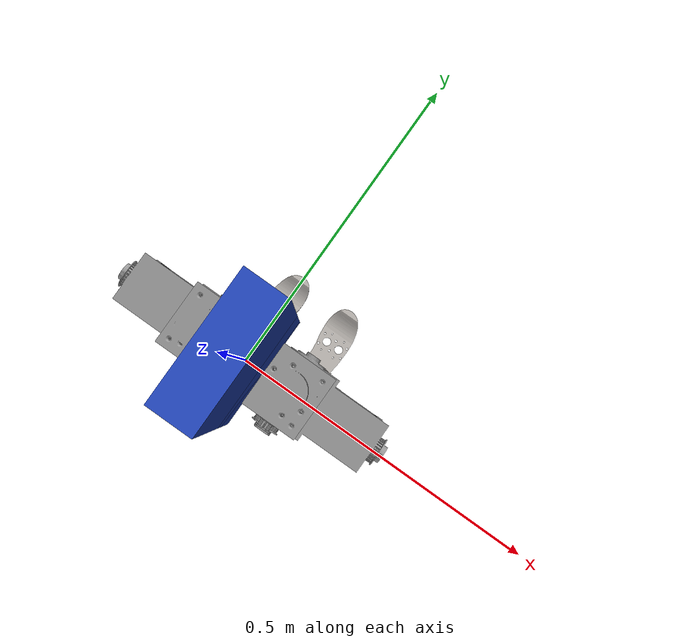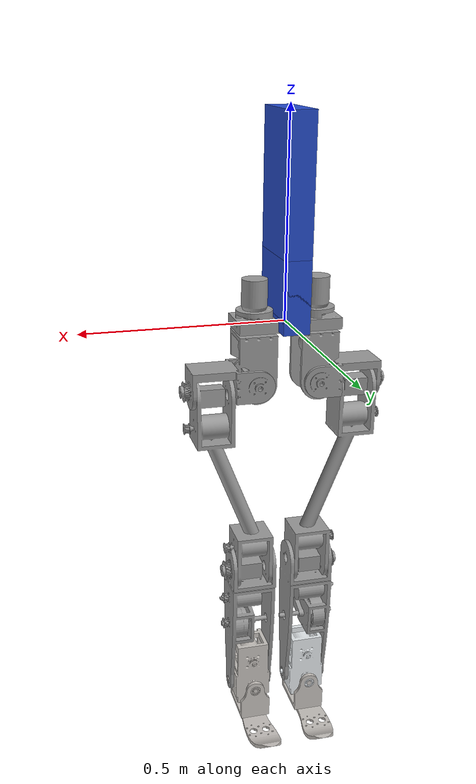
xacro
<?xml version="1.0"?>
<robot xmlns:xacro="http://www.ros.org/wiki/xacro" name="huron">
    <xacro:arg name="force_sensor" default="ft_sensor" />
    <xacro:property name="force_sensor_prop" value="$(arg force_sensor)" />

    <!-- HURON model for use with Gazebo simulation -->
    <xacro:include filename="$(find huron_description)/urdf/huron_macro.xacro" />
    <xacro:include filename="$(find huron_gazebo)/urdf/huron_ros2_control.xacro" />

    <!-- Add HURON Base -->
    <xacro:huron_base />

    <!-- ros2_control plugin -->
    <xacro:huron_ros2_control name="huron" prefix="" />

    <gazebo>
        <plugin name="ground_truth" filename="libgazebo_ros_p3d.so">
            <frameName>map</frameName>
            <bodyName>base_link</bodyName>
            <topicName>/huron/odom</topicName>
            <updateRate>100.0</updateRate>
        </plugin>
    </gazebo>

    <!-- imu sensor -->
    <gazebo reference="imu_link">
        <gravity>true</gravity>
        <sensor name="imu_sensor" type="imu">
            <always_on>true</always_on>
            <update_rate>100</update_rate>
            <visualize>true</visualize>
            <topic>/huron/sensor/imu</topic>
            <plugin filename="libgazebo_ros_imu_sensor.so" name="imu_plugin">
                <topicName>huron/sensor/imu</topicName>
                <bodyName>imu_link</bodyName>
                <updateRateHZ>10.0</updateRateHZ>
                <gaussianNoise>0.0</gaussianNoise>
                <xyzOffset>0 0 0</xyzOffset>
                <rpyOffset>0 0 0</rpyOffset>
                <frameName>imu_link</frameName>
            </plugin>
            <pose>0 0 0 0 0 0</pose>
        </sensor>
    </gazebo>

    <xacro:if value="${force_sensor_prop == 'fsr'}">
        <xacro:include filename="$(find huron_gazebo)/urdf/huron_fsr.xacro" />
    </xacro:if>
    <xacro:if value="${force_sensor_prop == 'ft_sensor'}">
        <xacro:include filename="$(find huron_gazebo)/urdf/huron_ft_sensor.xacro" />
    </xacro:if>

    <!-- World -->
    <gazebo reference="world"></gazebo>
    <!-- Map -->
    <gazebo reference="map"></gazebo>

    <gazebo reference="dummy"></gazebo>
    <!-- Base -->
    <gazebo reference="base_link">
        <mu1>0.2</mu1>
        <mu2>0.2</mu2>
        <material>Gazebo/Grey</material>
        <selfCollide>false</selfCollide>
    </gazebo>
    <!-- IMU -->
    <gazebo reference="imu_link"></gazebo>
    <!-- Body-->
    <!-- Battery -->
    <gazebo reference="battery_link">
        <material>Gazebo/SkyBlue</material>
        <selfCollide>false</selfCollide>
    </gazebo>
    <!-- Upper body visualization -->
    <gazebo reference="upper_body_link">
        <material>Gazebo/SkyBlue</material>
        <selfCollide>false</selfCollide>
    </gazebo>
    <!-- Left Leg -->
    <gazebo reference="l_hip_yaw_link">
        <mu1>0.2</mu1>
        <mu2>0.2</mu2>
        <material>Gazebo/Grey</material>
        <selfCollide>false</selfCollide>

    </gazebo>
    <gazebo reference="l_hip_roll_link">
        <mu1>0.2</mu1>
        <mu2>0.2</mu2>
        <material>Gazebo/Grey</material>
        <selfCollide>false</selfCollide>
    </gazebo>
    <gazebo reference="l_hip_pitch_link">
        <mu1>0.2</mu1>
        <mu2>0.2</mu2>
        <material>Gazebo/Grey</material>
        <selfCollide>false</selfCollide>
    </gazebo>
    <gazebo reference="l_knee_pitch_link">
        <mu1>0.2</mu1>
        <mu2>0.2</mu2>
        <material>Gazebo/Grey</material>
        <selfCollide>false</selfCollide>
    </gazebo>
    <gazebo reference="l_ankle_pitch_link">
        <mu1>0.2</mu1>
        <mu2>0.2</mu2>
        <material>Gazebo/Grey</material>
        <selfCollide>false</selfCollide>
    </gazebo>
    <gazebo reference="l_ankle_roll_link">
        <kp>1e15</kp>
        <kd>1e13</kd>
        <mu1>0.9</mu1>
        <mu2>0.9</mu2>
        <fdir1>0 0 1</fdir1>
        <material>Gazebo/Blue</material>
    </gazebo>

    <!-- Right Leg -->
    <gazebo reference="r_hip_yaw_link">
        <mu1>0.2</mu1>
        <mu2>0.2</mu2>
        <material>Gazebo/Grey</material>
        <selfCollide>false</selfCollide>
    </gazebo>
    <gazebo reference="r_hip_roll_link">
        <mu1>0.2</mu1>
        <mu2>0.2</mu2>
        <material>Gazebo/Grey</material>
        <selfCollide>false</selfCollide>
    </gazebo>
    <gazebo reference="r_hip_pitch_link">
        <mu1>0.2</mu1>
        <mu2>0.2</mu2>
        <material>Gazebo/Grey</material>
        <selfCollide>false</selfCollide>
    </gazebo>
    <gazebo reference="r_knee_pitch_link">
        <mu1>0.2</mu1>
        <mu2>0.2</mu2>
        <material>Gazebo/Grey</material>
        <selfCollide>false</selfCollide>
    </gazebo>
    <gazebo reference="r_ankle_pitch_link">
        <mu1>0.2</mu1>
        <mu2>0.2</mu2>
        <material>Gazebo/Grey</material>
        <selfCollide>false</selfCollide>
    </gazebo>
    <gazebo reference="r_ankle_roll_link">
        <kp>1e15</kp>
        <kd>1e13</kd>
        <mu1>0.9</mu1>
        <mu2>0.9</mu2>
        <fdir1>0 0 1</fdir1>
        <material>Gazebo/Blue</material>
    </gazebo>
</robot>

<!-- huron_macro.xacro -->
<robot xmlns:xacro="http://wiki.ros.org/xacro">
  <!--
    Macro to generate a basic HURON robot.
  -->

  <xacro:macro name="huron_base">

    <xacro:include filename="$(find huron_description)/urdf/materials.xacro" />
    <xacro:include filename="$(find huron_description)/urdf/huron_visuals.xacro" />
    <xacro:include filename="$(find huron_description)/urdf/huron_inertia.xacro" />
    <xacro:include filename="$(find huron_description)/urdf/huron_right_leg.xacro" />
    <xacro:include filename="$(find huron_description)/urdf/huron_left_leg.xacro" />
    <xacro:include filename="$(find huron_description)/urdf/huron_misc.xacro" />
    <xacro:include filename="$(find huron_description)/urdf/huron_transmissions.xacro" />

    <link name="dummy"></link>
    <link name="base_link">
      <visual>
        <origin xyz="0 0 0" rpy="0 0 0" />
        <geometry>
          <mesh filename="package://huron_description/meshes/base_link.STL" scale="1 1 1" />
        </geometry>
      </visual>
      <collision>
        <origin xyz="0 0 0" rpy="0 0 0" />
        <geometry>
          <mesh filename="package://huron_description/meshes/base_link.STL" scale="1 1 1" />
        </geometry>
      </collision>
      <inertial>
        <origin
          xyz="-1.3585E-07 5.07E-07 0.026975"
          rpy="0 0 0" />
        <mass
          value="3.4072" />
        <inertia
          ixx="0.00319"
          ixy="-1.7776E-09"
          ixz="-1.7316E-09"
          iyy="0.010531"
          iyz="6.4623E-09"
          izz="0.012315" />
      </inertial>
    </link>
    <joint name="dummy_joint" type="fixed">
      <parent link="dummy"/>
      <child link="base_link"/>
    </joint>

    <!-- imu joint -->
    <joint name="imu_fixed" type="fixed">
      <origin xyz="0 0 0" rpy="0 0 0"/>
      <parent link="base_link"/>
      <child link="imu_link"/>
    </joint>
    <link name="imu_link"></link>

    <!-- leg link -->
    <xacro:huron_right_leg parent="base_link" dxl_effort="1000000" dxl_speed="3000"/>
    <xacro:huron_left_leg parent="base_link" dxl_effort="1000000" dxl_speed="3000"/>
    <xacro:huron_misc />

  </xacro:macro>
</robot>

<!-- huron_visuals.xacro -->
<robot
    xmlns:xacro="http://www.ros.org/wiki/xacro">
    <!-- body link -->
    <xacro:macro name="insert_mesh_base_link">
        <origin xyz="0 0 0" rpy="0 0 0" />
        <geometry>
            <mesh filename="package://huron_description/meshes/base_link.STL" scale="1 1 1" />
        </geometry>
        <material name="grey"/>
    </xacro:macro>

    <!-- Battery -->
    <xacro:macro name="insert_mesh_battery_link">
        <origin xyz="0 0 0" rpy="0 0 0" />
        <geometry>
            <box size="0.065 0.188 0.151" />
        </geometry>
        <material name="blue"/>
    </xacro:macro>

    <!-- Upper body visualization -->
    <xacro:macro name="insert_mesh_upper_body_link">
        <origin xyz="0 0 0" rpy="0 0 0" />
        <geometry>
            <box size="0.065 0.188 0.5" />
        </geometry>
        <material name="blue"/>
    </xacro:macro>

    <!-- left hip yaw link -->
    <xacro:macro name="insert_mesh_l_hip_yaw_link">
        <origin xyz="0 0 0" rpy="0 0 0" />
        <geometry>
            <mesh filename="package://huron_description/meshes/l_hip_yaw_link.STL" scale="1 1 1" />
        </geometry>
        <material name="grey"/>
    </xacro:macro>
    <!-- left hip roll link -->
    <xacro:macro name="insert_mesh_l_hip_roll_link">
        <origin xyz="0 0 0" rpy="0 0 0" />
        <geometry>
            <mesh filename="package://huron_description/meshes/l_hip_roll_link.STL" scale="1 1 1" />
        </geometry>
        <material name="grey"/>
    </xacro:macro>
    <!-- left hip pitch link -->
    <xacro:macro name="insert_mesh_l_hip_pitch_link">
        <origin xyz="0 0 0" rpy="0 0 0" />
        <geometry>
            <mesh filename="package://huron_description/meshes/l_hip_pitch_link.STL" scale="1 1 1" />
        </geometry>
        <material name="grey"/>
    </xacro:macro>
    <!-- left knee pitch link -->
    <xacro:macro name="insert_mesh_l_knee_pitch_link">
        <origin xyz="0 0 0" rpy="0 0 0" />
        <geometry>
            <mesh filename="package://huron_description/meshes/l_knee_pitch_link.STL" scale="1 1 1" />
        </geometry>
        <material name="grey"/>
    </xacro:macro>
    <!-- left ankle pitch link -->
    <xacro:macro name="insert_mesh_l_ankle_pitch_link">
        <origin xyz="0 0 0" rpy="0 0 0" />
        <geometry>
            <mesh filename="package://huron_description/meshes/l_ankle_pitch_link.STL" scale="1 1 1" />
        </geometry>
        <material name="">
            <color rgba="0.89804 0.91765 0.92941 1" />
        </material>
    </xacro:macro>
    <!-- left ankle roll link -->
    <xacro:macro name="insert_mesh_l_ankle_roll_link">
        <origin xyz="0 0 0" rpy="0 0 0" />
        <geometry>
            <mesh filename="package://huron_description/meshes/l_ankle_roll_link.STL" scale="1 1 1" />
        </geometry>
        <material name="">
            <color rgba="0.77647 0.75686 0.73725 1" />
        </material>
    </xacro:macro>

    <!-- l1_foot_ft link -->
    <xacro:macro name="insert_mesh_l1_foot_ft_link">
        <origin xyz="0 0 0" rpy=" 0 0 0" />
        <geometry>
            <mesh filename="package://huron_description/meshes/l1_foot_ft_link.STL" scale="1 1 1" />
        </geometry>
        <material name="green"/>
    </xacro:macro>

    <!-- l2_foot_ft link  -->
    <xacro:macro name="insert_mesh_l2_foot_ft_link">
        <origin xyz="0 0 0" rpy=" 0 0 0" />
        <geometry>
            <mesh filename="package://huron_description/meshes/l2_foot_ft_link.STL" scale="1 1 1" />
        </geometry>
        <material name="green"/>
    </xacro:macro>

    <!-- l3_foot_ft link 3 -->
    <xacro:macro name="insert_mesh_l3_foot_ft_link">
        <origin xyz="0 0 0" rpy=" 0 0 0" />
        <geometry>
            <mesh filename="package://huron_description/meshes/l3_foot_ft_link.STL" scale="1 1 1" />
        </geometry>
        <material name="green"/>
    </xacro:macro>

    <!-- l4_foot_ft link 4 -->
    <xacro:macro name="insert_mesh_l4_foot_ft_link">
        <origin xyz="0 0 0" rpy=" 0 0 0" />
        <geometry>
            <mesh filename="package://huron_description/meshes/l4_foot_ft_link.STL" scale="1 1 1" />
        </geometry>
        <material name="green"/>
    </xacro:macro>

    <!-- right hip yaw link -->
    <xacro:macro name="insert_mesh_r_hip_yaw_link">
        <origin xyz="0 0 0" rpy="0 0 0" />
        <geometry>
            <mesh filename="package://huron_description/meshes/r_hip_yaw_link.STL" scale="1 1 1" />
        </geometry>
        <material name="grey"/>
    </xacro:macro>
    <!-- right hip roll link -->
    <xacro:macro name="insert_mesh_r_hip_roll_link">
        <origin xyz="0 0 0" rpy="0 0 0" />
        <geometry>
            <mesh filename="package://huron_description/meshes/r_hip_roll_link.STL" scale="1 1 1" />
        </geometry>
        <material name="grey"/>
    </xacro:macro>
    <!-- right hip pitch link -->
    <xacro:macro name="insert_mesh_r_hip_pitch_link">
        <origin xyz="0 0 0" rpy="0 0 0" />
        <geometry>
            <mesh filename="package://huron_description/meshes/r_hip_pitch_link.STL" scale="1 1 1" />
        </geometry>
        <material name="grey"/>
    </xacro:macro>
    <!-- right knee link -->
    <xacro:macro name="insert_mesh_r_knee_pitch_link">
        <origin xyz="0 0 0" rpy="0 0 0" />
        <geometry>
            <mesh filename="package://huron_description/meshes/r_knee_pitch_link.STL" scale="1 1 1" />
        </geometry>
        <material name="grey"/>
    </xacro:macro>
    <!-- right ankle pitch link -->
    <xacro:macro name="insert_mesh_r_ankle_pitch_link">
        <origin xyz="0 0 0" rpy="0 0 0" />
        <geometry>
            <mesh filename="package://huron_description/meshes/r_ankle_pitch_link.STL" scale="1 1 1" />
        </geometry>
        <material name="">
            <color rgba="0.77647 0.75686 0.73725 1" />
        </material>
    </xacro:macro>
    <!-- right ankle roll link -->
    <xacro:macro name="insert_mesh_r_ankle_roll_link">
        <origin xyz="0 0 0" rpy="0 0 0" />
        <geometry>
            <mesh filename="package://huron_description/meshes/r_ankle_roll_link.STL" scale="1 1 1" />
        </geometry>
        <material name="">
            <color rgba="0.77647 0.75686 0.73725 1" />
        </material>
    </xacro:macro>

    <!-- Right foot sensors -->
    <!-- r1_foot_ft link -->
    <xacro:macro name="insert_mesh_r1_foot_ft_link">
        <origin xyz="0 0 0" rpy=" 0 0 0" />
        <geometry>
            <mesh filename="package://huron_description/meshes/r1_foot_ft_link.STL" scale="1 1 1" />
        </geometry>
        <material name="green"/>
    </xacro:macro>

    <!-- r2_foot_ft link  -->
    <xacro:macro name="insert_mesh_r2_foot_ft_link">
        <origin xyz="0 0 0" rpy=" 0 0 0" />
        <geometry>
            <mesh filename="package://huron_description/meshes/r2_foot_ft_link.STL" scale="1 1 1" />
        </geometry>
        <material name="green"/>
    </xacro:macro>

    <!-- r3_foot_ft link 3-->
    <xacro:macro name="insert_mesh_r3_foot_ft_link">
        <origin xyz="0 0 0" rpy=" 0 0 0" />
        <geometry>
            <mesh filename="package://huron_description/meshes/r3_foot_ft_link.STL" scale="1 1 1" />
        </geometry>
        <material name="green"/>
    </xacro:macro>

    <!-- r4_foot_ft link 4 -->
    <xacro:macro name="insert_mesh_r4_foot_ft_link">
        <origin xyz="0 0 0" rpy=" 0 0 0" />
        <geometry>
            <mesh filename="package://huron_description/meshes/r4_foot_ft_link.STL" scale="1 1 1" />
        </geometry>
        <material name="green"/>
    </xacro:macro>

    <!-- Foot base -->
    <xacro:macro name="insert_mesh_foot_base_link">
        <origin xyz="0 0 0" rpy="0 0 0" />
        <geometry>
            <box size="0.078 0.005 0.231" />
        </geometry>
        <material name="green"/>
    </xacro:macro>
</robot>

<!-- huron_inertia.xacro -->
<robot
    xmlns:xacro="http://www.ros.org/wiki/xacro">
    <!-- body link -->
    <xacro:macro name="insert_inertia_base_link">
      <origin
        xyz="-1.3585E-07 5.07E-07 0.026975"
        rpy="0 0 0" />
      <mass
        value="3.4072" />
      <inertia
        ixx="0.00319"
        ixy="-1.7776E-09"
        ixz="-1.7316E-09"
        iyy="0.010531"
        iyz="6.4623E-09"
        izz="0.012315" />
    </xacro:macro>

    <!-- Battery link -->
    <xacro:macro name="insert_inertia_battery_link">
      <origin
        xyz="0 0 0"
        rpy="0 0 0" />
      <mass
        value="3.90089" />
      <inertia
        ixx="0.01890143742"
        ixy="0"
        ixz="0"
        iyy="0.0128628597"
        iyz="0"
        izz="0.008785454428" />
    </xacro:macro>

    <!-- Upper body visualization link -->
    <xacro:macro name="insert_inertia_upper_body_link">
      <origin
        xyz="0 0 0"
        rpy="0 0 0" />
      <mass
        value="0.00001" />
      <inertia
        ixx="0.000001"
        ixy="0"
        ixz="0"
        iyy="0.000001"
        iyz="0"
        izz="0.000001" />
    </xacro:macro>

    <!-- left hip yaw link -->
    <xacro:macro name="insert_inertia_l_hip_yaw_link">
      <origin
        xyz="0.00063365 -0.00053469 0.063505"
        rpy="0 0 0" />
      <mass
        value="1.6968" />
      <inertia
        ixx="0.0022702"
        ixy="-2.4951E-10"
        ixz="6.6464E-06"
        iyy="0.0026746"
        iyz="-5.1468E-09"
        izz="0.001238" />
    </xacro:macro>
    <!-- left hip roll link -->
    <xacro:macro name="insert_inertia_l_hip_roll_link">
      <origin
        xyz="0.07196 0.0061153 -0.0005211"
        rpy="0 0 0" />
      <mass
        value="1.1884" />
      <inertia
        ixx="0.00098222"
        ixy="-9.9267E-08"
        ixz="4.9764E-09"
        iyy="0.00097045"
        iyz="-9.7285E-08"
        izz="0.00092365" />
    </xacro:macro>
    <!-- left hip pitch link -->
    <xacro:macro name="insert_inertia_l_hip_pitch_link">
      <origin
        xyz="0.25103 -7.7295E-06 0.053135"
        rpy="0 0 0" />
      <mass
        value="4.2544" />
      <inertia
        ixx="0.0034501"
        ixy="-1.1102E-07"
        ixz="0.0019797"
        iyy="0.010035"
        iyz="-4.8767E-10"
        izz="0.01009" />
    </xacro:macro>
    <!-- left knee link -->
    <xacro:macro name="insert_inertia_l_knee_pitch_link">
      <origin
        xyz="0.13397 0.00066001 0.0028723"
        rpy="0 0 0" />
      <mass
        value="3.4875" />
      <inertia
        ixx="0.0064814"
        ixy="1.2524E-05"
        ixz="-2.7966E-05"
        iyy="0.019762"
        iyz="1.0417E-05"
        izz="0.017354" />
    </xacro:macro>
    <!-- left ankle pitch link -->
    <xacro:macro name="insert_inertia_l_ankle_pitch_link">
      <origin
        xyz="-0.029808 0.001045 3.1134E-08"
        rpy="0 0 0" />
      <mass
        value="2.4242" />
      <inertia
        ixx="0.0025143"
        ixy="-0.00025651"
        ixz="1.1633E-12"
        iyy="0.0045125"
        iyz="6.7197E-10"
        izz="0.0049235" />
    </xacro:macro>
    <!-- left ankle roll link -->
    <xacro:macro name="insert_inertia_l_ankle_roll_link">
      <origin
        xyz="0.07353 6.708E-05 0.063947"
        rpy="0 0 0" />
      <mass
        value="1.8633" />
      <inertia
        ixx="0.0086824"
        ixy="-9.8353E-06"
        ixz="0.00024334"
        iyy="0.0084059"
        iyz="0.00012379"
        izz="0.0013021" />
    </xacro:macro>

    <!-- Left foot sensors -->
    <!-- l1_foot_ft link -->
    <xacro:macro name="insert_inertia_l1_foot_ft_link">
      <origin
        xyz="-5.7176E-15 0.0047713 3.2752E-15"
        rpy="0 0 0" />
      <mass
        value="0.0061011" />
      <inertia
        ixx="3.1713E-07"
        ixy="3.8307E-22"
        ixz="-1.1921E-22"
        iyy="4.8773E-07"
        iyz="-1.0683E-22"
        izz="3.1713E-07" />
    </xacro:macro>

    <!-- l2_foot_ft link  -->
    <xacro:macro name="insert_inertia_l2_foot_ft_link">
      <origin
        xyz="-4.46864767411626E-15 0.00477126123234917 2.4980018054066E-15"
        rpy="0 0 0" />
      <mass
        value="0.00610112058812606" />
      <inertia
        ixx="3.17133668071686E-07"
        ixy="4.81665130591134E-22"
        ixz="-8.8406170379935E-23"
        iyy="4.87731969834605E-07"
        iyz="-8.74913874421171E-23"
        izz="3.17133668071686E-07" />
    </xacro:macro>

    <!-- l3_foot_ft link 3 -->
    <xacro:macro name="insert_inertia_l3_foot_ft_link">
      <origin
        xyz="-2.19269047363468E-15 0.00477126123234894 1.4432899320127E-15"
        rpy="0 0 0" />
      <mass
        value="0.00610112058812606" />
      <inertia
        ixx="3.17133668071686E-07"
        ixy="4.98475719906322E-22"
        ixz="-6.41076334805219E-23"
        iyy="4.87731969834605E-07"
        iyz="-7.83706170725903E-23"
        izz="3.17133668071686E-07" />
    </xacro:macro>

    <!-- l4_foot_ft link 4 -->
    <xacro:macro name="insert_inertia_l4_foot_ft_link">
      <origin
        xyz="-8.32667268468867E-16 0.00477126123234917 6.66133814775094E-16"
        rpy="0 0 0" />
      <mass
        value="0.00610112058812606" />
      <inertia
        ixx="3.17133668071686E-07"
        ixy="3.66436341457745E-22"
        ixz="5.6860083747849E-23"
        iyy="4.87731969834605E-07"
        iyz="-1.13521885241387E-22"
        izz="3.17133668071686E-07" />
    </xacro:macro>

 <!-- Right leg -->

    <!-- right hip yaw link -->
    <xacro:macro name="insert_inertia_r_hip_yaw_link">
      <origin
        xyz="0.00063365 0.00053469 0.063505"
        rpy="0 0 0" />
      <mass
        value="1.6968" />
      <inertia
        ixx="0.0022702"
        ixy="-2.4951E-10"
        ixz="6.6464E-06"
        iyy="0.0026746"
        iyz="5.1468E-09"
        izz="0.001238" />
    </xacro:macro>
    <!-- right hip roll link -->
    <xacro:macro name="insert_inertia_r_hip_roll_link">
      <origin
        xyz="-0.07196 0.0061153 -0.0005211"
        rpy="0 0 0" />
      <mass
        value="1.1884" />
      <inertia
        ixx="0.00098222"
        ixy="9.9267E-08"
        ixz="4.9764E-09"
        iyy="0.00097045"
        iyz="9.7285E-08"
        izz="0.00092365" />
    </xacro:macro>
    <!-- right hip pitch link -->
    <xacro:macro name="insert_inertia_r_hip_pitch_link">
      <origin
        xyz="0.25103 -7.7295E-06 -0.053135"
        rpy="0 0 0" />
      <mass
        value="4.2544" />
      <inertia
        ixx="0.0034501"
        ixy="1.1102E-07"
        ixz="-0.0019797"
        iyy="0.010035"
        iyz="-4.8767E-10"
        izz="0.01009" />
    </xacro:macro>
    <!-- right knee link -->
    <xacro:macro name="insert_inertia_r_knee_pitch_link">
      <origin
        xyz="0.13397 0.00066001 -0.0028723"
        rpy="0 0 0" />
      <mass
        value="3.4875" />
      <inertia
        ixx="0.0064814"
        ixy="1.2524E-05"
        ixz="2.7966E-05"
        iyy="0.019762"
        iyz="-1.0417E-05"
        izz="0.017354" />
    </xacro:macro>
    <!-- right ankle pitch link -->
    <xacro:macro name="insert_inertia_r_ankle_pitch_link">
      <origin
        xyz="-0.029808 0.001045 3.1134E-08"
        rpy="0 0 0" />
      <mass
        value="2.4242" />
      <inertia
        ixx="0.0025143"
        ixy="-0.00025651"
        ixz="1.1633E-12"
        iyy="0.0045125"
        iyz="6.7197E-10"
        izz="0.0049235" />
    </xacro:macro>
    <!-- right ankle roll link -->
    <xacro:macro name="insert_inertia_r_ankle_roll_link">
      <origin
        xyz="0.07353 -6.708E-05 0.063947"
        rpy="0 0 0" />
      <mass
        value="1.8633" />
      <inertia
        ixx="0.0086824"
        ixy="9.8353E-06"
        ixz="0.00024334"
        iyy="0.0084059"
        iyz="-0.00012379"
        izz="0.0013021" />
    </xacro:macro>

    <!-- Right foot sensors -->

    <!-- r1_foot_ft link -->
    <xacro:macro name="insert_inertia_r1_foot_ft_link">
      <origin
        xyz="4.02455846426619E-16 0.00477126123234806 2.77555756156289E-16"
        rpy="0 0 0" />
      <mass
        value="0.00610112058812607" />
      <inertia
        ixx="3.17133668071686E-07"
        ixy="-4.44802942503628E-22"
        ixz="-5.13396248201841E-23"
        iyy="4.87731969834605E-07"
        iyz="6.29534110948095E-22"
        izz="3.17133668071686E-07" />
    </xacro:macro>

    <!-- r2_foot_ft link  -->
    <xacro:macro name="insert_inertia_r2_foot_ft_link">
      <origin
        xyz="2.45636844198316E-15 0.00477126123234772 -5.55111512312578E-17"
        rpy="0 0 0" />
      <mass
        value="0.00610112058812607" />
      <inertia
        ixx="3.17133668071686E-07"
        ixy="-4.50854564995024E-22"
        ixz="-3.37723169777971E-23"
        iyy="4.87731969834605E-07"
        iyz="6.62187087857084E-22"
        izz="3.17133668071686E-07" />
    </xacro:macro>

    <!-- r_foot_ft link 3 -->
    <xacro:macro name="insert_inertia_r3_foot_ft_link">
      <origin
        xyz="1.84574577843932E-15 0.00477126123234928 -1.11022302462516E-16"
        rpy="0 0 0" />
      <mass
        value="0.00610112058812607" />
      <inertia
        ixx="3.17133668071686E-07"
        ixy="-4.50482113604524E-22"
        ixz="-5.92683031466877E-23"
        iyy="4.87731969834605E-07"
        iyz="6.6444452379759E-22"
        izz="3.17133668071686E-07" />
    </xacro:macro>

    <!-- r_foot_ft link 4 -->
    <xacro:macro name="insert_inertia_r4_foot_ft_link">
      <origin
        xyz="1.80411241501588E-15 0.00477126123234772 -1.66533453693773E-16"
        rpy="0 0 0" />
      <mass
        value="0.00610112058812607" />
      <inertia
        ixx="3.17133668071686E-07"
        ixy="-4.47159964907589E-22"
        ixz="1.84653258585498E-23"
        iyy="4.87731969834605E-07"
        iyz="6.53995762781336E-22"
        izz="3.17133668071686E-07" />
    </xacro:macro>

    <!-- Foot base link -->
    <xacro:macro name="insert_inertia_foot_base_link">
      <origin
        xyz="0 0 0"
        rpy="0 0 0" />
      <mass
        value="0.01" />
      <inertia
        ixx="4.448833333E-05"
        ixy="0"
        ixz="0"
        iyy="4.95375E-05"
        iyz="0"
        izz="5.090833333E-06" />
    </xacro:macro>
</robot>

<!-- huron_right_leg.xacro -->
<robot
    xmlns:xacro="http://www.ros.org/wiki/xacro">
    <!-- right leg -->
    <xacro:macro name="huron_right_leg" params="parent dxl_effort dxl_speed">
        <!-- right hip yaw joint -->
        <joint
          name="r_hip_yaw_joint"
          type="revolute">
          <origin
            xyz="0.0775 0 -0.14512"
            rpy="0 0 ${pi}" />
          <parent
            link="${parent}" />
          <child
            link="r_hip_yaw_link" />
          <axis
            xyz="0 0 1" />
          <limit
            lower="-3.1416"
            upper="3.1416"
            effort="${dxl_effort}"
            velocity="${dxl_speed}" />
          <dynamics
            damping="0.5"
            friction="1" />
        </joint>
        <xacro:insert_transmission name="r_hip_yaw_joint"/>
        <!-- right hip yaw link -->
        <link name="r_hip_yaw_link">
            <visual>
                <xacro:insert_mesh_r_hip_yaw_link />
            </visual>
            <collision>
                <xacro:insert_mesh_r_hip_yaw_link />
            </collision>
            <inertial>
                <xacro:insert_inertia_r_hip_yaw_link />
            </inertial>
        </link>
        <!-- right hip roll joint-->
        <joint
          name="r_hip_roll_joint"
          type="revolute">
          <origin
            xyz="0 0 0"
            rpy="${pi/2} 0 0" />
          <parent
            link="r_hip_yaw_link" />
          <child
            link="r_hip_roll_link" />
          <axis
            xyz="0 0 1" />
          <limit
            lower="-0.5236"
            upper="0.01"
            effort="${dxl_effort}"
            velocity="${dxl_speed}" />
          <dynamics
            damping="0.5"
            friction="1" />
        </joint>
        <xacro:insert_transmission name="r_hip_roll_joint"/>
        <!-- right hip roll link -->
        <link name="r_hip_roll_link">
            <visual>
                <xacro:insert_mesh_r_hip_roll_link />
            </visual>
            <collision>
                <xacro:insert_mesh_r_hip_roll_link />
            </collision>
            <inertial>
                <xacro:insert_inertia_r_hip_roll_link />
            </inertial>
        </link>
        <!-- right hip pitch joint -->
        <joint
          name="r_hip_pitch_joint"
          type="revolute">
          <origin
            xyz="-1.6665E-05 -0.0165 -5E-05"
            rpy="${-pi/2} 0 ${-pi/2}" />
          <parent
            link="r_hip_roll_link" />
          <child
            link="r_hip_pitch_link" />
          <axis
            xyz="0 0 1" />
          <limit
            lower="-1.2217"
            upper="1.2217"
            effort="${dxl_effort}"
            velocity="${dxl_speed}" />
          <dynamics
            damping="0.5"
            friction="1" />
        </joint>
        <xacro:insert_transmission name="r_hip_pitch_joint"/>
        <!-- right hip pitch link -->
        <link name="r_hip_pitch_link">
            <visual>
                <xacro:insert_mesh_r_hip_pitch_link />
            </visual>
            <collision>
                <xacro:insert_mesh_r_hip_pitch_link />
            </collision>
            <inertial>
                <xacro:insert_inertia_r_hip_pitch_link />
            </inertial>
        </link>
        <!-- right knee pitch joint -->
        <joint
          name="r_knee_pitch_joint"
          type="revolute">
          <origin
            xyz="0.49628 0 0"
            rpy="0 0 0" />
          <parent
            link="r_hip_pitch_link" />
          <child
            link="r_knee_pitch_link" />
          <axis
            xyz="0 0 1" />
          <limit
            lower="-${pi/2}"
            upper="${pi/2}"
            effort="${dxl_effort}"
            velocity="${dxl_speed}" />
          <dynamics
            damping="0.5"
            friction="1" />
        </joint>
        <xacro:insert_transmission name="r_knee_pitch_joint"/>
        <!-- right knee pitch link -->
        <link name="r_knee_pitch_link">
            <visual>
                <xacro:insert_mesh_r_knee_pitch_link />
            </visual>
            <collision>
                <xacro:insert_mesh_r_knee_pitch_link />
            </collision>
            <inertial>
                <xacro:insert_inertia_r_knee_pitch_link />
            </inertial>
        </link>
        <!-- right ankle pitch joint -->
        <joint
          name="r_ankle_pitch_joint"
          type="revolute">
          <origin
            xyz="0.37 0 0"
            rpy="0 0 0.0" />
          <parent
            link="r_knee_pitch_link" />
          <child
            link="r_ankle_pitch_link" />
          <axis
            xyz="0 0 1" />
          <limit
            lower="-0.5236"
            upper="0.1745"
            effort="${dxl_effort}"
            velocity="${dxl_speed}" />
          <dynamics
            damping="0.5"
            friction="1" />
        </joint>
        <xacro:insert_transmission name="r_ankle_pitch_joint"/>
        <!-- right ankle pitch link -->
        <link name="r_ankle_pitch_link">
            <visual>
                <xacro:insert_mesh_r_ankle_pitch_link />
            </visual>
            <collision>
                <xacro:insert_mesh_r_ankle_pitch_link />
            </collision>
            <inertial>
                <xacro:insert_inertia_r_ankle_pitch_link />
            </inertial>
        </link>
        <!-- right ankle roll joint -->
        <joint
          name="r_ankle_roll_joint"
          type="revolute">
          <origin
            xyz="0 0 0"
            rpy="${pi/2} 0 0" />
          <parent
            link="r_ankle_pitch_link" />
          <child
            link="r_ankle_roll_link" />
          <axis
            xyz="0 0 1" />
          <limit
            lower="-0.3491"
            upper="0.3491"
            effort="${dxl_effort}"
            velocity="${dxl_speed}" />
          <dynamics
            damping="0.5"
            friction="10" />
        </joint>
        <xacro:insert_transmission name="r_ankle_roll_joint"/>
        <!-- right ankle roll link -->
        <link name="r_ankle_roll_link">
            <visual>
                <xacro:insert_mesh_r_ankle_roll_link />
            </visual>
            <collision>
                <xacro:insert_mesh_r_ankle_roll_link />
            </collision>
            <inertial>
                <xacro:insert_inertia_r_ankle_roll_link />
            </inertial>
        </link>

    </xacro:macro>
</robot>

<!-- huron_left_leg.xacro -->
<robot
    xmlns:xacro="http://www.ros.org/wiki/xacro">
    <!-- left leg -->
    <xacro:macro name="huron_left_leg" params="parent dxl_effort dxl_speed">
        <!-- left hip yaw joint -->
        <joint name="l_hip_yaw_joint" type="fixed">
          <origin
            xyz="-0.0775 0 -0.1451242"
            rpy="0 0 0" />
          <parent link="${parent}" />
          <child link="l_hip_yaw_link" />
          <axis xyz="0 0 1" />
          <limit
            lower="-3.1416"
            upper="3.1416"
            effort="${dxl_effort}"
            velocity="${dxl_speed}" />
          <dynamics
            damping="0.5"
            friction="1" />
        </joint>
        <xacro:insert_transmission name="l_hip_yaw_joint"/>
        <!-- left hip yaw link -->
        <link name="l_hip_yaw_link">
            <visual>
                <xacro:insert_mesh_l_hip_yaw_link />
            </visual>
            <collision>
                <xacro:insert_mesh_l_hip_yaw_link />
            </collision>
            <inertial>
                <xacro:insert_inertia_l_hip_yaw_link />
            </inertial>
        </link>
        <!-- left hip roll joint-->
        <joint
          name="l_hip_roll_joint"
          type="fixed">
          <origin
            xyz="0 0 0"
            rpy="${pi/2} 0 ${pi}" />
          <parent
            link="l_hip_yaw_link" />
          <child
            link="l_hip_roll_link" />
          <axis
            xyz="0 0 1" />
          <limit
            lower="-0.01"
            upper="0.5236"
            effort="${dxl_effort}"
            velocity="${dxl_speed}" />
          <dynamics
            damping="0.5"
            friction="1" />
        </joint>
        <xacro:insert_transmission name="l_hip_roll_joint"/>
        <!-- left hip roll link -->
        <link name="l_hip_roll_link">
            <visual>
                <xacro:insert_mesh_l_hip_roll_link />
            </visual>
            <collision>
                <xacro:insert_mesh_l_hip_roll_link />
            </collision>
            <inertial>
                <xacro:insert_inertia_l_hip_roll_link />
            </inertial>
        </link>
        <!-- left hip pitch joint -->
        <joint
          name="l_hip_pitch_joint"
          type="revolute">
          <origin
            xyz="1.6665E-05 -0.0165 -5E-05"
            rpy="${-pi/2} 0 ${-pi/2}" />
          <parent
            link="l_hip_roll_link" />
          <child
            link="l_hip_pitch_link" />
          <axis
            xyz="0 0 1" />
          <limit
            lower="-1.2217"
            upper="1.2217"
            effort="${dxl_effort}"
            velocity="${dxl_speed}" />
          <dynamics
            damping="0.5"
            friction="1" />
        </joint>
        <xacro:insert_transmission name="l_hip_pitch_joint"/>
        <!-- left hip pitch link -->
        <link name="l_hip_pitch_link">
            <visual>
                <xacro:insert_mesh_l_hip_pitch_link />
            </visual>
            <collision>
                <xacro:insert_mesh_l_hip_pitch_link />
            </collision>
            <inertial>
                <xacro:insert_inertia_l_hip_pitch_link />
            </inertial>
        </link>
        <!-- left knee pitch joint -->
        <joint
          name="l_knee_pitch_joint"
          type="revolute">
          <origin
            xyz="0.49628 0 0"
            rpy="0 0 0" />
          <parent
            link="l_hip_pitch_link" />
          <child
            link="l_knee_pitch_link" />
          <axis
            xyz="0 0 1" />
          <limit
            lower="${-pi/2}"
            upper="${pi/2}"
            effort="${dxl_effort}"
            velocity="${dxl_speed}" />
          <dynamics
            damping="0.5"
            friction="1" />
        </joint>
        <xacro:insert_transmission name="l_knee_pitch_joint"/>
        <!-- left knee pitch link -->
        <link name="l_knee_pitch_link">
            <visual>
                <xacro:insert_mesh_l_knee_pitch_link />
            </visual>
            <collision>
                <xacro:insert_mesh_l_knee_pitch_link />
            </collision>
            <inertial>
                <xacro:insert_inertia_l_knee_pitch_link />
            </inertial>
        </link>
        <!-- left ankle pitch joint -->
        <joint
          name="l_ankle_pitch_joint"
          type="revolute">
          <origin
            xyz="0.37 0 0"
            rpy="0 0 0.0" />
          <parent
            link="l_knee_pitch_link" />
          <child
            link="l_ankle_pitch_link" />
          <axis
            xyz="0 0 1" />
          <limit
            lower="-0.5236"
            upper="0.1745"
            effort="${dxl_effort}"
            velocity="${dxl_speed}" />
          <dynamics
            damping="0.5"
            friction="1" />
        </joint>
        <xacro:insert_transmission name="l_ankle_pitch_joint"/>
        <!-- left ankle pitch link -->
        <link name="l_ankle_pitch_link">
            <visual>
                <xacro:insert_mesh_l_ankle_pitch_link />
            </visual>
            <collision>
                <xacro:insert_mesh_l_ankle_pitch_link />
            </collision>
            <inertial>
                <xacro:insert_inertia_l_ankle_pitch_link />
            </inertial>
        </link>
        <!-- left ankle roll pitch -->
        <joint
          name="l_ankle_roll_joint"
          type="revolute">
          <origin
            xyz="0 0 0"
            rpy="${pi/2} 0 0" />
          <parent
            link="l_ankle_pitch_link" />
          <child
            link="l_ankle_roll_link" />
          <axis
            xyz="0 0 1" />
          <limit
            lower="-0.3491"
            upper="0.3491"
            effort="${dxl_effort}"
            velocity="${dxl_speed}" />
          <dynamics
            damping="0.5"
            friction="10" />
        </joint>
        <xacro:insert_transmission name="l_ankle_roll_joint"/>
        <!-- left ankle roll link -->
        <link name="l_ankle_roll_link">
            <visual>
                <xacro:insert_mesh_l_ankle_roll_link />
            </visual>
            <collision>
                <xacro:insert_mesh_l_ankle_roll_link />
            </collision>
            <inertial>
                <xacro:insert_inertia_l_ankle_roll_link />
            </inertial>
        </link>

    </xacro:macro>
</robot>

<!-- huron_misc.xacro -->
<robot
    xmlns:xacro="http://www.ros.org/wiki/xacro">
    <xacro:macro name="huron_misc">
    <!-- Battery -->
    <link name="battery_link">
        <visual>
            <xacro:insert_mesh_battery_link />
        </visual>
        <collision>
            <xacro:insert_mesh_battery_link />
        </collision>
        <inertial>
            <xacro:insert_inertia_battery_link />
        </inertial>
    </link>
    <joint name="battery_fixed" type="fixed">
        <origin xyz="0 0 0.0895" rpy="0 0 0"/>
        <parent link="base_link"/>
        <child link="battery_link"/>
    </joint>

    <!-- Upper body visualization -->
    <link name="upper_body_link">
        <visual>
            <xacro:insert_mesh_upper_body_link />
        </visual>
        <collision>
            <xacro:insert_mesh_upper_body_link />
        </collision>
        <inertial>
            <xacro:insert_inertia_upper_body_link />
        </inertial>
    </link>
    <joint name="upper_body_fixed" type="fixed">
        <origin xyz="0 0 0.1505" rpy="0 0 0"/>
        <parent link="battery_link"/>
        <child link="upper_body_link"/>
    </joint>

    </xacro:macro>
</robot>
